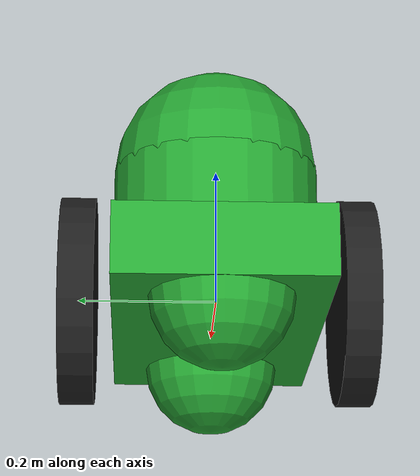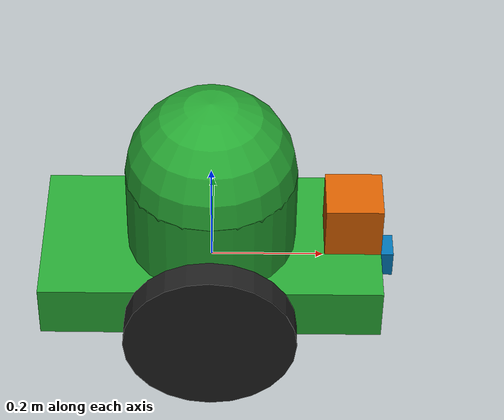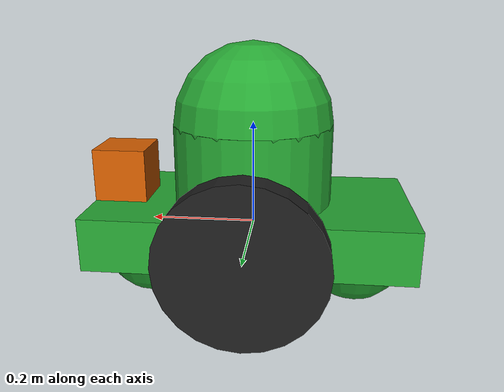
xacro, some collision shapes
<?xml version='1.0'?>

<robot name="my_robot" xmlns:xacro="http://www.ros.org/wiki/xacro">

  <xacro:include filename="$(find my_robot)/urdf/my_robot.gazebo" />

  <link name="robot_footprint"></link>

  <joint name="robot_footprint_joint" type="fixed">
    <origin xyz="0 0 0" rpy="0 0 0" />
    <parent link="robot_footprint"/>
    <child link="chassis" />
  </joint>

  <link name='chassis'>
    <pose>0 0 0.1 0 0 0</pose>

    <inertial>
      <mass value="15.0"/>
      <origin xyz="0.0 0 0" rpy=" 0 0 0"/>
      <inertia
          ixx="0.1" ixy="0" ixz="0"
          iyy="0.1" iyz="0"
          izz="0.1"
      />
    </inertial>

    <collision name='collision'>
      <origin xyz="0 0 0" rpy=" 0 0 0"/>
      <geometry>
        <box size=".6 .3 .1"/>
      </geometry>
    </collision>

    <visual name='chassis_visual'>
      <origin xyz="0 0 0" rpy=" 0 0 0"/>
      <geometry>
        <box size=".6 .3 .1"/>
      </geometry>
    </visual>

    <collision name='body'>
      <origin xyz="0 0 0.125" rpy=" 0 0 0"/>
      <geometry>
        <cylinder length="0.15" radius="0.15"/>
      </geometry>
    </collision>

    <visual name='body_visual'>
      <origin xyz="0 0 0.125" rpy=" 0 0 0"/>
      <geometry>
        <cylinder length="0.15" radius="0.15"/>
      </geometry>
    </visual>

    <collision name='head'>
      <origin xyz="0 0 0.2" rpy=" 0 0 0"/>
      <geometry>
        <sphere radius="0.15"/>
      </geometry>
    </collision>

    <visual name='head_visual'>
      <origin xyz="0 0 0.2" rpy=" 0 0 0"/>
      <geometry>
        <sphere radius="0.15"/>
      </geometry>
    </visual>

    <collision name='back_caster_collision'>
      <origin xyz="-0.2 0 -0.05" rpy=" 0 0 0"/>
      <geometry>
        <sphere radius="0.0999"/>
      </geometry>
    </collision>

    <visual name='back_caster_visual'>
      <origin xyz="-0.2 0 -0.05" rpy=" 0 0 0"/>
      <geometry>
        <sphere radius="0.1"/>
      </geometry>
    </visual>

    <collision name='front_caster_collision'>
      <origin xyz="0.2 0 -0.05" rpy=" 0 0 0"/>
      <geometry>
        <sphere radius="0.0999"/>
      </geometry>
    </collision>

    <visual name='front_caster_visual'>
      <origin xyz="0.2 0 -0.05" rpy=" 0 0 0"/>
      <geometry>
        <sphere radius="0.1"/>
      </geometry>
    </visual>

  </link>

  <link name="left_wheel">
    <inertial>
      <mass value="5.0"/>
      <origin xyz="0.0 0 0" rpy=" 0 1.5707 1.5707"/>
      <inertia
          ixx="0.1" ixy="0" ixz="0"
          iyy="0.1" iyz="0"
          izz="0.1"
      />
    </inertial>

    <collision name='left_wheel_collision'>
      <origin xyz="0 0 0" rpy=" 0 1.5707 1.5707"/>
      <geometry>
        <cylinder length="0.05" radius="0.15"/>
      </geometry>
    </collision>

    <visual name='left_wheel_visual'>
      <origin xyz="0 0 0" rpy=" 0 1.5707 1.5707"/>
      <geometry>
        <cylinder length="0.05" radius="0.15"/>
      </geometry>
    </visual>
  </link>

  <link name="right_wheel">
    <inertial>
      <mass value="5.0"/>
      <origin xyz="0.0 0 0" rpy=" 0 1.5707 1.5707"/>
      <inertia
          ixx="0.1" ixy="0" ixz="0"
          iyy="0.1" iyz="0"
          izz="0.1"
      />
    </inertial>

    <collision name='right_wheel_collision'>
      <origin xyz="0 0 0" rpy=" 0 1.5707 1.5707"/>
      <geometry>
        <cylinder length="0.05" radius="0.15"/>
      </geometry>
    </collision>

    <visual name='right_wheel_visual'>
      <origin xyz="0 0 0" rpy=" 0 1.5707 1.5707"/>
      <geometry>
        <cylinder length="0.05" radius="0.15"/>
      </geometry>
    </visual>
  </link>

  <link name="camera">
    <pose>0 0 0 0 0 0</pose>

    <inertial>
      <mass value="0.1"/>
      <origin xyz="0 0 0" rpy=" 0 0 0"/>
      <inertia
          ixx="1e-6" ixy="0" ixz="0"
          iyy="1e-6" iyz="0"
          izz="1e-6"
      />
    </inertial>

    <collision name='camera_collision'>
      <origin xyz="0 0 0" rpy=" 0 0 0"/>
      <geometry>
        <box size=".05 .05 .05"/>
      </geometry>
    </collision>

    <visual name='camera_visual'>
      <origin xyz="0 0 0" rpy=" 0 0 0"/>
      <geometry>
        <box size=".05 .05 .05"/>
      </geometry>
    </visual>
  </link>

  <link name="hokuyo">
    <pose>0 0 0 0 0 0</pose>

    <inertial>
      <mass value="1e-5"/>
      <origin xyz="0 0 0" rpy=" 0 0 0"/>
      <inertia
          ixx="1e-6" ixy="0" ixz="0"
          iyy="1e-6" iyz="0"
          izz="1e-6"
      />
    </inertial>

    <collision name='camera_collision'>
      <origin xyz="0 0 0" rpy=" 0 0 0"/>
      <geometry>
        <box size=".1 .1 .1"/>
      </geometry>
    </collision>

    <visual name='camera_visual'>
      <origin xyz="0 0 0" rpy=" 0 0 0"/>
      <geometry>
        <mesh filename="package://my_robot/meshes/hokuyo.dae"/>
      </geometry>
    </visual>
  </link>

  <link name="camera_link_optical">
  </link>

  <joint type="continuous" name="left_wheel_hinge">
    <origin xyz="0 0.2 0" rpy="0 0 0"/>
    <child link="left_wheel"/>
    <parent link="chassis"/>
    <axis xyz="0 1 0" rpy="0 0 0"/>
    <limit effort="10000" velocity="1000"/>
    <dynamics damping="1.0" friction="1.0"/>
  </joint>

  <joint type="continuous" name="right_wheel_hinge">
    <origin xyz="0 -0.2 0" rpy="0 0 0"/>
    <child link="right_wheel"/>
    <parent link="chassis"/>
    <axis xyz="0 1 0" rpy="0 0 0"/>
    <limit effort="10000" velocity="1000"/>
    <dynamics damping="1.0" friction="1.0"/>
  </joint>

  <joint type="fixed" name="camera_joint">
    <origin xyz="0.3 0 0" rpy="0 0 0"/>
    <child link="camera"/>
    <parent link="chassis"/>
    <axis xyz="0 1 0" rpy="0 0 0"/>
  </joint>

  <joint name="camera_optical_joint" type="fixed">
    <origin xyz="0 0 0" rpy="-1.5707 0 -1.5707"/>
    <parent link="camera"/>
    <child link="camera_link_optical"/>
  </joint>

  <joint type="fixed" name="hokuyo_joint">
    <origin xyz="0.25 0 0.1" rpy="0 0 0"/>
    <child link="hokuyo"/>
    <parent link="chassis"/>
    <axis xyz="0 1 0" rpy="0 0 0"/>
  </joint>

  <gazebo reference="chassis">
    <material>Gazebo/Green</material>
  </gazebo>

  <gazebo reference="left_wheel">
    <material>Gazebo/Black</material>
  </gazebo>

  <gazebo reference="right_wheel">
    <material>Gazebo/Black</material>
  </gazebo>

</robot>
